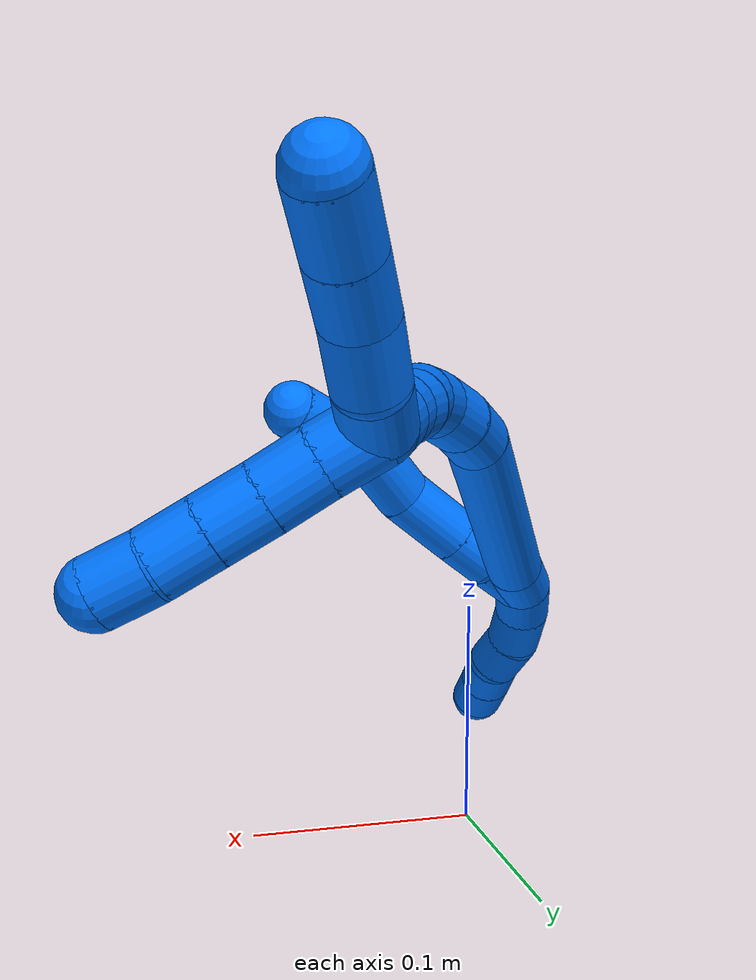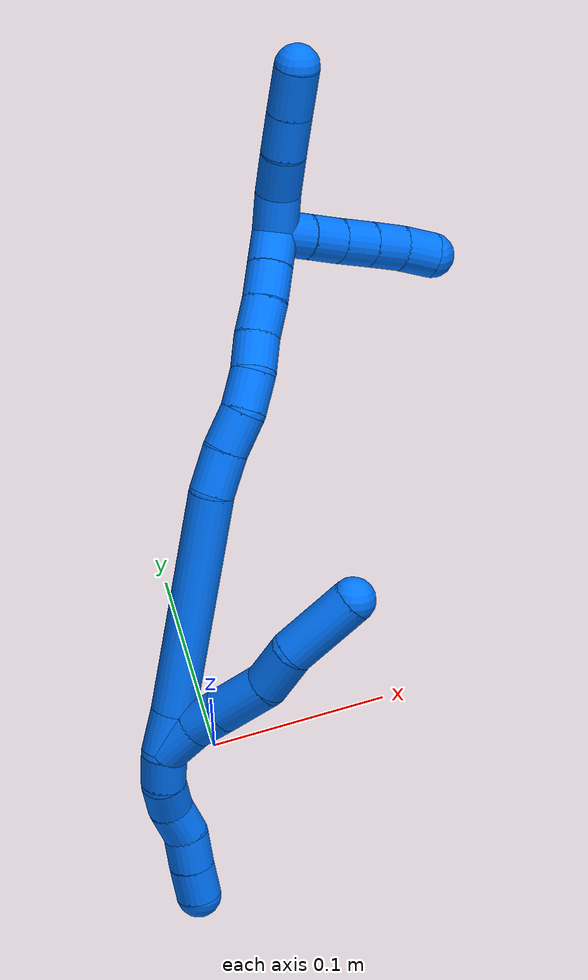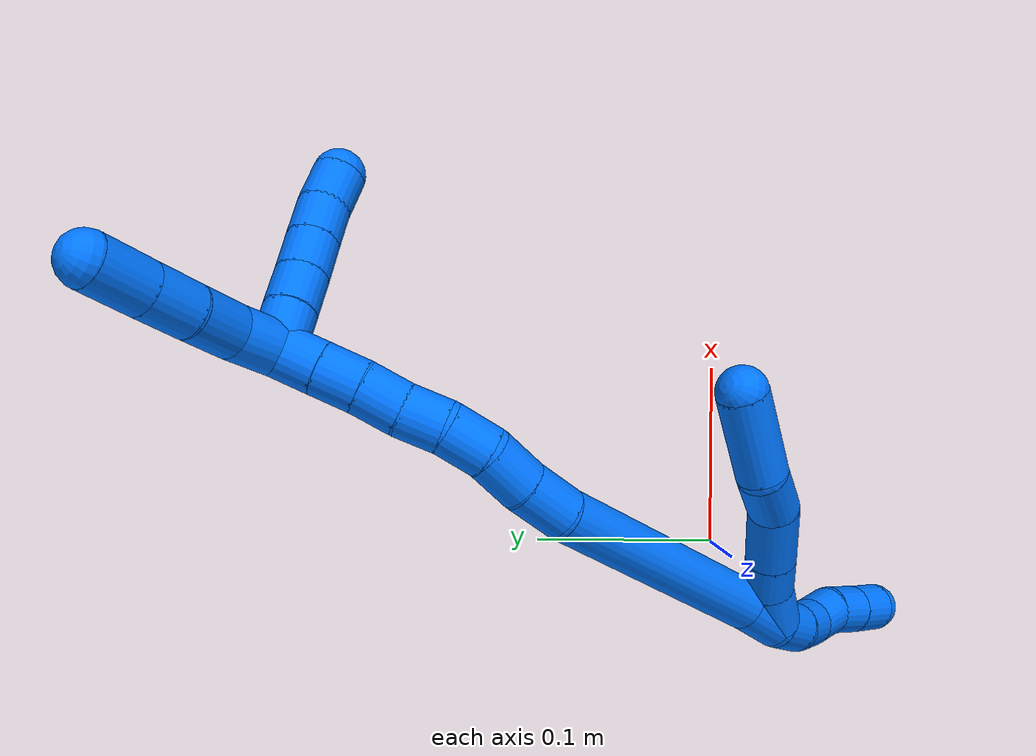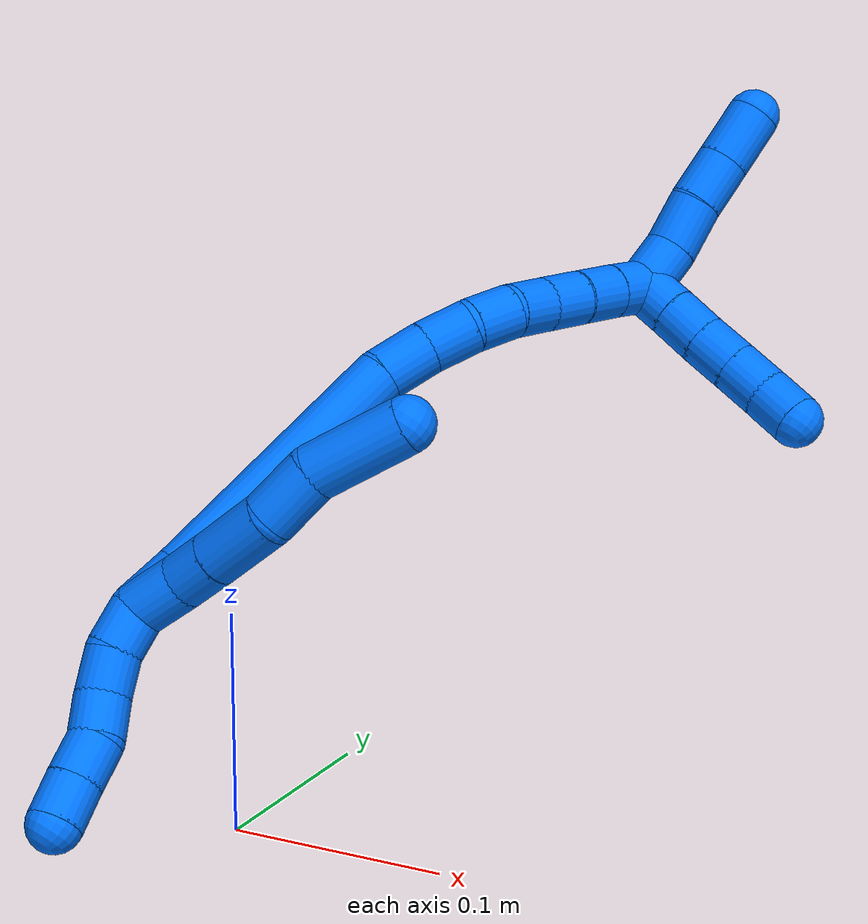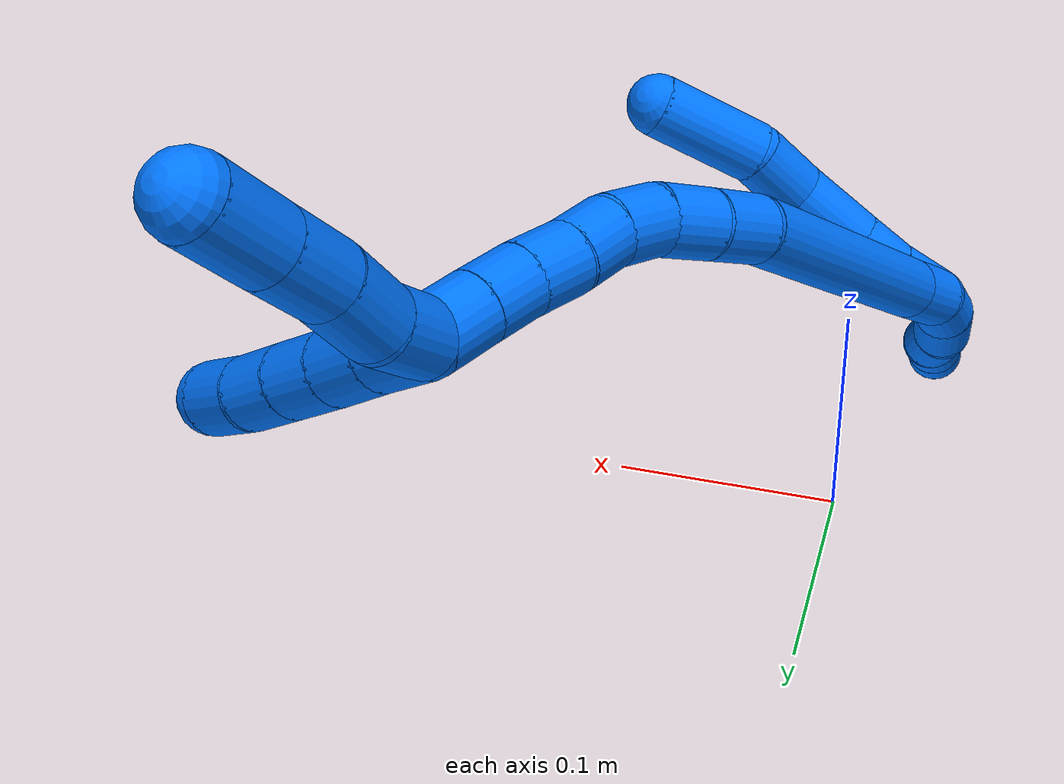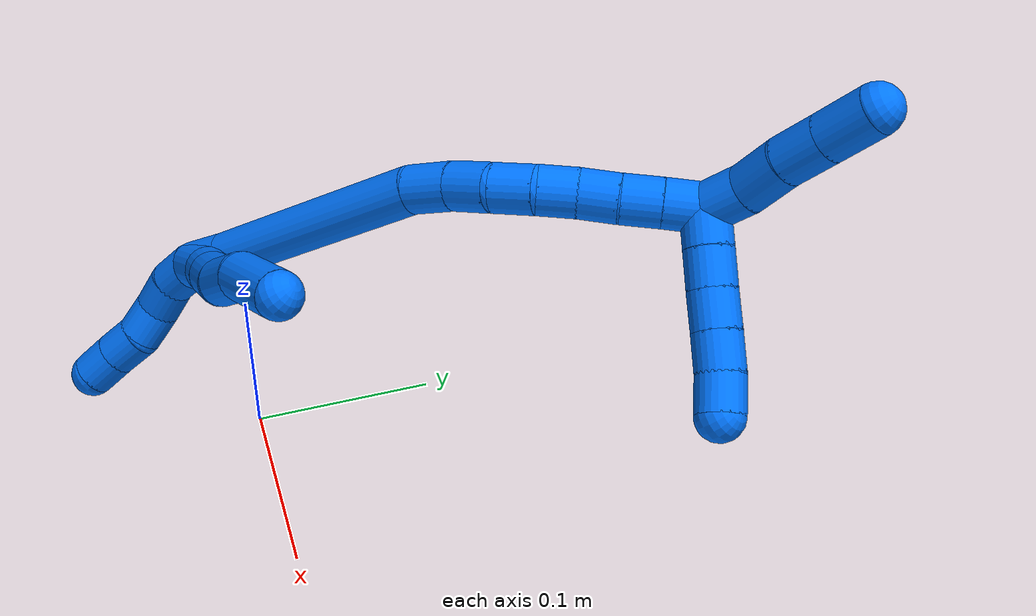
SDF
<sdf version="1.7">
 <world name="default">
  <model name="14">
   <static>0</static>
   <link name="14">
    <collision name="collision-cylinder-e_1_2_8">
     <pose>0.00453 -0.006666 0.009463 0.613715 0.373023 0.119446</pose>
     <geometry><cylinder><radius>0.0125</radius><length>0.02486</length></cylinder></geometry>
     <surface>
      <friction><ode><mu>1.16</mu><mu2>1.16</mu2><slip1>0</slip1><slip2>0</slip2></ode></friction>
      <contact><ode><kp>1e+06</kp><kd>1</kd><max_vel>0</max_vel><min_depth>0.001</min_depth></ode></contact>
     </surface>
    </collision>
    <visual name="visual-cylinder-e_1_2_8">
     <pose>0.00453 -0.006666 0.009463 0.613715 0.373023 0.119446</pose>
     <geometry><cylinder><radius>0.0125</radius><length>0.02486</length></cylinder></geometry>
     <material><ambient>0 0.462745 1 1</ambient></material>
    </visual>
    <collision name="collision-cylinder-e_2_8_9">
     <pose>0.012086 -0.02028 0.025518 0.81168 0.306096 0.132371</pose>
     <geometry><cylinder><radius>0.0125</radius><length>0.020088</length></cylinder></geometry>
     <surface>
      <friction><ode><mu>1.16</mu><mu2>1.16</mu2><slip1>0</slip1><slip2>0</slip2></ode></friction>
      <contact><ode><kp>1e+06</kp><kd>1</kd><max_vel>0</max_vel><min_depth>0.001</min_depth></ode></contact>
     </surface>
    </collision>
    <visual name="visual-cylinder-e_2_8_9">
     <pose>0.012086 -0.02028 0.025518 0.81168 0.306096 0.132371</pose>
     <geometry><cylinder><radius>0.0125</radius><length>0.020088</length></cylinder></geometry>
     <material><ambient>0 0.462745 1 1</ambient></material>
    </visual>
    <collision name="collision-cylinder-e_3_9_10">
     <pose>0.019823 -0.038393 0.043168 0.790155 0.291173 0.122133</pose>
     <geometry><cylinder><radius>0.0125</radius><length>0.03281</length></cylinder></geometry>
     <surface>
      <friction><ode><mu>1.16</mu><mu2>1.16</mu2><slip1>0</slip1><slip2>0</slip2></ode></friction>
      <contact><ode><kp>1e+06</kp><kd>1</kd><max_vel>0</max_vel><min_depth>0.001</min_depth></ode></contact>
     </surface>
    </collision>
    <visual name="visual-cylinder-e_3_9_10">
     <pose>0.019823 -0.038393 0.043168 0.790155 0.291173 0.122133</pose>
     <geometry><cylinder><radius>0.0125</radius><length>0.03281</length></cylinder></geometry>
     <material><ambient>0 0.462745 1 1</ambient></material>
    </visual>
    <collision name="collision-cylinder-e_4_10_11">
     <pose>0.026967 -0.055775 0.066027 0.484983 0.180552 0.044775</pose>
     <geometry><cylinder><radius>0.0125</radius><length>0.027116</length></cylinder></geometry>
     <surface>
      <friction><ode><mu>1.16</mu><mu2>1.16</mu2><slip1>0</slip1><slip2>0</slip2></ode></friction>
      <contact><ode><kp>1e+06</kp><kd>1</kd><max_vel>0</max_vel><min_depth>0.001</min_depth></ode></contact>
     </surface>
    </collision>
    <visual name="visual-cylinder-e_4_10_11">
     <pose>0.026967 -0.055775 0.066027 0.484983 0.180552 0.044775</pose>
     <geometry><cylinder><radius>0.0125</radius><length>0.027116</length></cylinder></geometry>
     <material><ambient>0 0.462745 1 1</ambient></material>
    </visual>
    <collision name="collision-cylinder-e_5_11_6">
     <pose>0.039779 -0.073219 0.094421 0.594775 0.477919 0.149047</pose>
     <geometry><cylinder><radius>0.0125</radius><length>0.045125</length></cylinder></geometry>
     <surface>
      <friction><ode><mu>1.16</mu><mu2>1.16</mu2><slip1>0</slip1><slip2>0</slip2></ode></friction>
      <contact><ode><kp>1e+06</kp><kd>1</kd><max_vel>0</max_vel><min_depth>0.001</min_depth></ode></contact>
     </surface>
    </collision>
    <visual name="visual-cylinder-e_5_11_6">
     <pose>0.039779 -0.073219 0.094421 0.594775 0.477919 0.149047</pose>
     <geometry><cylinder><radius>0.0125</radius><length>0.045125</length></cylinder></geometry>
     <material><ambient>0 0.462745 1 1</ambient></material>
    </visual>
    <collision name="collision-cylinder-e_1_2_12">
     <pose>0.000646 0.000244 -0.009976 -3.1171 0.064639 -2.41741</pose>
     <geometry><cylinder><radius>0.0125</radius><length>0.02</length></cylinder></geometry>
     <surface>
      <friction><ode><mu>1.16</mu><mu2>1.16</mu2><slip1>0</slip1><slip2>0</slip2></ode></friction>
      <contact><ode><kp>1e+06</kp><kd>1</kd><max_vel>0</max_vel><min_depth>0.001</min_depth></ode></contact>
     </surface>
    </collision>
    <visual name="visual-cylinder-e_1_2_12">
     <pose>0.000646 0.000244 -0.009976 -3.1171 0.064639 -2.41741</pose>
     <geometry><cylinder><radius>0.0125</radius><length>0.02</length></cylinder></geometry>
     <material><ambient>0 0.462745 1 1</ambient></material>
    </visual>
    <collision name="collision-cylinder-e_2_12_13">
     <pose>0.00471 0.00065 -0.029349 -3.12444 0.348824 -3.04433</pose>
     <geometry><cylinder><radius>0.0125</radius><length>0.02</length></cylinder></geometry>
     <surface>
      <friction><ode><mu>1.16</mu><mu2>1.16</mu2><slip1>0</slip1><slip2>0</slip2></ode></friction>
      <contact><ode><kp>1e+06</kp><kd>1</kd><max_vel>0</max_vel><min_depth>0.001</min_depth></ode></contact>
     </surface>
    </collision>
    <visual name="visual-cylinder-e_2_12_13">
     <pose>0.00471 0.00065 -0.029349 -3.12444 0.348824 -3.04433</pose>
     <geometry><cylinder><radius>0.0125</radius><length>0.02</length></cylinder></geometry>
     <material><ambient>0 0.462745 1 1</ambient></material>
    </visual>
    <collision name="collision-cylinder-e_3_13_14">
     <pose>0.012091 -0.001788 -0.04755 2.85455 0.407553 1.92103</pose>
     <geometry><cylinder><radius>0.0125</radius><length>0.02</length></cylinder></geometry>
     <surface>
      <friction><ode><mu>1.16</mu><mu2>1.16</mu2><slip1>0</slip1><slip2>0</slip2></ode></friction>
      <contact><ode><kp>1e+06</kp><kd>1</kd><max_vel>0</max_vel><min_depth>0.001</min_depth></ode></contact>
     </surface>
    </collision>
    <visual name="visual-cylinder-e_3_13_14">
     <pose>0.012091 -0.001788 -0.04755 2.85455 0.407553 1.92103</pose>
     <geometry><cylinder><radius>0.0125</radius><length>0.02</length></cylinder></geometry>
     <material><ambient>0 0.462745 1 1</ambient></material>
    </visual>
    <collision name="collision-cylinder-e_4_14_15">
     <pose>0.017109 -0.006264 -0.066121 2.95179 0.105584 1.01356</pose>
     <geometry><cylinder><radius>0.0125</radius><length>0.02</length></cylinder></geometry>
     <surface>
      <friction><ode><mu>1.16</mu><mu2>1.16</mu2><slip1>0</slip1><slip2>0</slip2></ode></friction>
      <contact><ode><kp>1e+06</kp><kd>1</kd><max_vel>0</max_vel><min_depth>0.001</min_depth></ode></contact>
     </surface>
    </collision>
    <visual name="visual-cylinder-e_4_14_15">
     <pose>0.017109 -0.006264 -0.066121 2.95179 0.105584 1.01356</pose>
     <geometry><cylinder><radius>0.0125</radius><length>0.02</length></cylinder></geometry>
     <material><ambient>0 0.462745 1 1</ambient></material>
    </visual>
    <collision name="collision-cylinder-e_5_15_5">
     <pose>0.019619 -0.010174 -0.085569 2.9345 0.14615 1.22741</pose>
     <geometry><cylinder><radius>0.0125</radius><length>0.02</length></cylinder></geometry>
     <surface>
      <friction><ode><mu>1.16</mu><mu2>1.16</mu2><slip1>0</slip1><slip2>0</slip2></ode></friction>
      <contact><ode><kp>1e+06</kp><kd>1</kd><max_vel>0</max_vel><min_depth>0.001</min_depth></ode></contact>
     </surface>
    </collision>
    <visual name="visual-cylinder-e_5_15_5">
     <pose>0.019619 -0.010174 -0.085569 2.9345 0.14615 1.22741</pose>
     <geometry><cylinder><radius>0.0125</radius><length>0.02</length></cylinder></geometry>
     <material><ambient>0 0.462745 1 1</ambient></material>
    </visual>
    <collision name="collision-cylinder-e_1_2_16">
     <pose>0.003036 -6.2e-05 0.011946 0.00519 0.248872 0.000649</pose>
     <geometry><cylinder><radius>0.0125</radius><length>0.024651</length></cylinder></geometry>
     <surface>
      <friction><ode><mu>1.16</mu><mu2>1.16</mu2><slip1>0</slip1><slip2>0</slip2></ode></friction>
      <contact><ode><kp>1e+06</kp><kd>1</kd><max_vel>0</max_vel><min_depth>0.001</min_depth></ode></contact>
     </surface>
    </collision>
    <visual name="visual-cylinder-e_1_2_16">
     <pose>0.003036 -6.2e-05 0.011946 0.00519 0.248872 0.000649</pose>
     <geometry><cylinder><radius>0.0125</radius><length>0.024651</length></cylinder></geometry>
     <material><ambient>0 0.462745 1 1</ambient></material>
    </visual>
    <collision name="collision-cylinder-e_2_16_17">
     <pose>0.018566 0.001458 0.085528 -0.025659 0.19993 -0.002574</pose>
     <geometry><cylinder><radius>0.0125</radius><length>0.125822</length></cylinder></geometry>
     <surface>
      <friction><ode><mu>1.16</mu><mu2>1.16</mu2><slip1>0</slip1><slip2>0</slip2></ode></friction>
      <contact><ode><kp>1e+06</kp><kd>1</kd><max_vel>0</max_vel><min_depth>0.001</min_depth></ode></contact>
     </surface>
    </collision>
    <visual name="visual-cylinder-e_2_16_17">
     <pose>0.018566 0.001458 0.085528 -0.025659 0.19993 -0.002574</pose>
     <geometry><cylinder><radius>0.0125</radius><length>0.125822</length></cylinder></geometry>
     <material><ambient>0 0.462745 1 1</ambient></material>
    </visual>
    <collision name="collision-cylinder-e_3_17_18">
     <pose>0.035996 0.003357 0.158388 -0.028259 0.414257 -0.005939</pose>
     <geometry><cylinder><radius>0.0125</radius><length>0.024527</length></cylinder></geometry>
     <surface>
      <friction><ode><mu>1.16</mu><mu2>1.16</mu2><slip1>0</slip1><slip2>0</slip2></ode></friction>
      <contact><ode><kp>1e+06</kp><kd>1</kd><max_vel>0</max_vel><min_depth>0.001</min_depth></ode></contact>
     </surface>
    </collision>
    <visual name="visual-cylinder-e_3_17_18">
     <pose>0.035996 0.003357 0.158388 -0.028259 0.414257 -0.005939</pose>
     <geometry><cylinder><radius>0.0125</radius><length>0.024527</length></cylinder></geometry>
     <material><ambient>0 0.462745 1 1</ambient></material>
    </visual>
    <collision name="collision-cylinder-e_4_18_19">
     <pose>0.046539 0.003088 0.179497 0.059184 0.515098 0.015593</pose>
     <geometry><cylinder><radius>0.0125</radius><length>0.022763</length></cylinder></geometry>
     <surface>
      <friction><ode><mu>1.16</mu><mu2>1.16</mu2><slip1>0</slip1><slip2>0</slip2></ode></friction>
      <contact><ode><kp>1e+06</kp><kd>1</kd><max_vel>0</max_vel><min_depth>0.001</min_depth></ode></contact>
     </surface>
    </collision>
    <visual name="visual-cylinder-e_4_18_19">
     <pose>0.046539 0.003088 0.179497 0.059184 0.515098 0.015593</pose>
     <geometry><cylinder><radius>0.0125</radius><length>0.022763</length></cylinder></geometry>
     <material><ambient>0 0.462745 1 1</ambient></material>
    </visual>
    <collision name="collision-cylinder-e_5_19_20">
     <pose>0.057951 0.004842 0.198337 -0.255593 0.560299 -0.073908</pose>
     <geometry><cylinder><radius>0.0125</radius><length>0.021849</length></cylinder></geometry>
     <surface>
      <friction><ode><mu>1.16</mu><mu2>1.16</mu2><slip1>0</slip1><slip2>0</slip2></ode></friction>
      <contact><ode><kp>1e+06</kp><kd>1</kd><max_vel>0</max_vel><min_depth>0.001</min_depth></ode></contact>
     </surface>
    </collision>
    <visual name="visual-cylinder-e_5_19_20">
     <pose>0.057951 0.004842 0.198337 -0.255593 0.560299 -0.073908</pose>
     <geometry><cylinder><radius>0.0125</radius><length>0.021849</length></cylinder></geometry>
     <material><ambient>0 0.462745 1 1</ambient></material>
    </visual>
    <collision name="collision-cylinder-e_6_20_21">
     <pose>0.069327 0.011492 0.21444 -0.542552 0.588343 -0.16813</pose>
     <geometry><cylinder><radius>0.0125</radius><length>0.020071</length></cylinder></geometry>
     <surface>
      <friction><ode><mu>1.16</mu><mu2>1.16</mu2><slip1>0</slip1><slip2>0</slip2></ode></friction>
      <contact><ode><kp>1e+06</kp><kd>1</kd><max_vel>0</max_vel><min_depth>0.001</min_depth></ode></contact>
     </surface>
    </collision>
    <visual name="visual-cylinder-e_6_20_21">
     <pose>0.069327 0.011492 0.21444 -0.542552 0.588343 -0.16813</pose>
     <geometry><cylinder><radius>0.0125</radius><length>0.020071</length></cylinder></geometry>
     <material><ambient>0 0.462745 1 1</ambient></material>
    </visual>
    <collision name="collision-cylinder-e_7_21_22">
     <pose>0.081007 0.019079 0.228943 -0.419115 0.649247 -0.142902</pose>
     <geometry><cylinder><radius>0.0125</radius><length>0.020215</length></cylinder></geometry>
     <surface>
      <friction><ode><mu>1.16</mu><mu2>1.16</mu2><slip1>0</slip1><slip2>0</slip2></ode></friction>
      <contact><ode><kp>1e+06</kp><kd>1</kd><max_vel>0</max_vel><min_depth>0.001</min_depth></ode></contact>
     </surface>
    </collision>
    <visual name="visual-cylinder-e_7_21_22">
     <pose>0.081007 0.019079 0.228943 -0.419115 0.649247 -0.142902</pose>
     <geometry><cylinder><radius>0.0125</radius><length>0.020215</length></cylinder></geometry>
     <material><ambient>0 0.462745 1 1</ambient></material>
    </visual>
    <collision name="collision-cylinder-e_8_22_23">
     <pose>0.092872 0.026385 0.243451 -0.513065 0.611235 -0.165144</pose>
     <geometry><cylinder><radius>0.0125</radius><length>0.020053</length></cylinder></geometry>
     <surface>
      <friction><ode><mu>1.16</mu><mu2>1.16</mu2><slip1>0</slip1><slip2>0</slip2></ode></friction>
      <contact><ode><kp>1e+06</kp><kd>1</kd><max_vel>0</max_vel><min_depth>0.001</min_depth></ode></contact>
     </surface>
    </collision>
    <visual name="visual-cylinder-e_8_22_23">
     <pose>0.092872 0.026385 0.243451 -0.513065 0.611235 -0.165144</pose>
     <geometry><cylinder><radius>0.0125</radius><length>0.020053</length></cylinder></geometry>
     <material><ambient>0 0.462745 1 1</ambient></material>
    </visual>
    <collision name="collision-cylinder-e_9_23_1">
     <pose>0.104549 0.03452 0.257575 -0.53222 0.632129 -0.177809</pose>
     <geometry><cylinder><radius>0.0125</radius><length>0.02005</length></cylinder></geometry>
     <surface>
      <friction><ode><mu>1.16</mu><mu2>1.16</mu2><slip1>0</slip1><slip2>0</slip2></ode></friction>
      <contact><ode><kp>1e+06</kp><kd>1</kd><max_vel>0</max_vel><min_depth>0.001</min_depth></ode></contact>
     </surface>
    </collision>
    <visual name="visual-cylinder-e_9_23_1">
     <pose>0.104549 0.03452 0.257575 -0.53222 0.632129 -0.177809</pose>
     <geometry><cylinder><radius>0.0125</radius><length>0.02005</length></cylinder></geometry>
     <material><ambient>0 0.462745 1 1</ambient></material>
    </visual>
    <collision name="collision-cylinder-e_1_1_24">
     <pose>0.111334 0.039075 0.276028 -0.03919 0.074839 -0.001467</pose>
     <geometry><cylinder><radius>0.0125</radius><length>0.02305</length></cylinder></geometry>
     <surface>
      <friction><ode><mu>1.16</mu><mu2>1.16</mu2><slip1>0</slip1><slip2>0</slip2></ode></friction>
      <contact><ode><kp>1e+06</kp><kd>1</kd><max_vel>0</max_vel><min_depth>0.001</min_depth></ode></contact>
     </surface>
    </collision>
    <visual name="visual-cylinder-e_1_1_24">
     <pose>0.111334 0.039075 0.276028 -0.03919 0.074839 -0.001467</pose>
     <geometry><cylinder><radius>0.0125</radius><length>0.02305</length></cylinder></geometry>
     <material><ambient>0 0.462745 1 1</ambient></material>
    </visual>
    <collision name="collision-cylinder-e_2_24_25">
     <pose>0.111127 0.03747 0.299827 0.165354 -0.085445 -0.007085</pose>
     <geometry><cylinder><radius>0.0125</radius><length>0.025064</length></cylinder></geometry>
     <surface>
      <friction><ode><mu>1.16</mu><mu2>1.16</mu2><slip1>0</slip1><slip2>0</slip2></ode></friction>
      <contact><ode><kp>1e+06</kp><kd>1</kd><max_vel>0</max_vel><min_depth>0.001</min_depth></ode></contact>
     </surface>
    </collision>
    <visual name="visual-cylinder-e_2_24_25">
     <pose>0.111127 0.03747 0.299827 0.165354 -0.085445 -0.007085</pose>
     <geometry><cylinder><radius>0.0125</radius><length>0.025064</length></cylinder></geometry>
     <material><ambient>0 0.462745 1 1</ambient></material>
    </visual>
    <collision name="collision-cylinder-e_3_25_26">
     <pose>0.110185 0.034202 0.324177 0.10042 0.010596 0.000532</pose>
     <geometry><cylinder><radius>0.0125</radius><length>0.024191</length></cylinder></geometry>
     <surface>
      <friction><ode><mu>1.16</mu><mu2>1.16</mu2><slip1>0</slip1><slip2>0</slip2></ode></friction>
      <contact><ode><kp>1e+06</kp><kd>1</kd><max_vel>0</max_vel><min_depth>0.001</min_depth></ode></contact>
     </surface>
    </collision>
    <visual name="visual-cylinder-e_3_25_26">
     <pose>0.110185 0.034202 0.324177 0.10042 0.010596 0.000532</pose>
     <geometry><cylinder><radius>0.0125</radius><length>0.024191</length></cylinder></geometry>
     <material><ambient>0 0.462745 1 1</ambient></material>
    </visual>
    <collision name="collision-cylinder-e_4_26_4">
     <pose>0.110389 0.031388 0.349965 0.115906 0.005477 0.000318</pose>
     <geometry><cylinder><radius>0.0125</radius><length>0.027695</length></cylinder></geometry>
     <surface>
      <friction><ode><mu>1.16</mu><mu2>1.16</mu2><slip1>0</slip1><slip2>0</slip2></ode></friction>
      <contact><ode><kp>1e+06</kp><kd>1</kd><max_vel>0</max_vel><min_depth>0.001</min_depth></ode></contact>
     </surface>
    </collision>
    <visual name="visual-cylinder-e_4_26_4">
     <pose>0.110389 0.031388 0.349965 0.115906 0.005477 0.000318</pose>
     <geometry><cylinder><radius>0.0125</radius><length>0.027695</length></cylinder></geometry>
     <material><ambient>0 0.462745 1 1</ambient></material>
    </visual>
    <collision name="collision-cylinder-e_1_1_27">
     <pose>0.119408 0.034941 0.261978 2.17927 1.10526 1.73663</pose>
     <geometry><cylinder><radius>0.0125</radius><length>0.02</length></cylinder></geometry>
     <surface>
      <friction><ode><mu>1.16</mu><mu2>1.16</mu2><slip1>0</slip1><slip2>0</slip2></ode></friction>
      <contact><ode><kp>1e+06</kp><kd>1</kd><max_vel>0</max_vel><min_depth>0.001</min_depth></ode></contact>
     </surface>
    </collision>
    <visual name="visual-cylinder-e_1_1_27">
     <pose>0.119408 0.034941 0.261978 2.17927 1.10526 1.73663</pose>
     <geometry><cylinder><radius>0.0125</radius><length>0.02</length></cylinder></geometry>
     <material><ambient>0 0.462745 1 1</ambient></material>
    </visual>
    <collision name="collision-cylinder-e_2_27_28">
     <pose>0.137342 0.027865 0.256666 2.25117 1.11922 1.83963</pose>
     <geometry><cylinder><radius>0.0125</radius><length>0.02</length></cylinder></geometry>
     <surface>
      <friction><ode><mu>1.16</mu><mu2>1.16</mu2><slip1>0</slip1><slip2>0</slip2></ode></friction>
      <contact><ode><kp>1e+06</kp><kd>1</kd><max_vel>0</max_vel><min_depth>0.001</min_depth></ode></contact>
     </surface>
    </collision>
    <visual name="visual-cylinder-e_2_27_28">
     <pose>0.137342 0.027865 0.256666 2.25117 1.11922 1.83963</pose>
     <geometry><cylinder><radius>0.0125</radius><length>0.02</length></cylinder></geometry>
     <material><ambient>0 0.462745 1 1</ambient></material>
    </visual>
    <collision name="collision-cylinder-e_3_28_29">
     <pose>0.15536 0.020923 0.251468 2.1755 1.12462 1.75334</pose>
     <geometry><cylinder><radius>0.0125</radius><length>0.02</length></cylinder></geometry>
     <surface>
      <friction><ode><mu>1.16</mu><mu2>1.16</mu2><slip1>0</slip1><slip2>0</slip2></ode></friction>
      <contact><ode><kp>1e+06</kp><kd>1</kd><max_vel>0</max_vel><min_depth>0.001</min_depth></ode></contact>
     </surface>
    </collision>
    <visual name="visual-cylinder-e_3_28_29">
     <pose>0.15536 0.020923 0.251468 2.1755 1.12462 1.75334</pose>
     <geometry><cylinder><radius>0.0125</radius><length>0.02</length></cylinder></geometry>
     <material><ambient>0 0.462745 1 1</ambient></material>
    </visual>
    <collision name="collision-cylinder-e_4_29_30">
     <pose>0.173351 0.013768 0.246454 2.18847 1.11274 1.75593</pose>
     <geometry><cylinder><radius>0.0125</radius><length>0.02</length></cylinder></geometry>
     <surface>
      <friction><ode><mu>1.16</mu><mu2>1.16</mu2><slip1>0</slip1><slip2>0</slip2></ode></friction>
      <contact><ode><kp>1e+06</kp><kd>1</kd><max_vel>0</max_vel><min_depth>0.001</min_depth></ode></contact>
     </surface>
    </collision>
    <visual name="visual-cylinder-e_4_29_30">
     <pose>0.173351 0.013768 0.246454 2.18847 1.11274 1.75593</pose>
     <geometry><cylinder><radius>0.0125</radius><length>0.02</length></cylinder></geometry>
     <material><ambient>0 0.462745 1 1</ambient></material>
    </visual>
    <collision name="collision-cylinder-e_5_30_3">
     <pose>0.190656 0.00552 0.240902 2.14305 0.985638 1.55539</pose>
     <geometry><cylinder><radius>0.0125</radius><length>0.02</length></cylinder></geometry>
     <surface>
      <friction><ode><mu>1.16</mu><mu2>1.16</mu2><slip1>0</slip1><slip2>0</slip2></ode></friction>
      <contact><ode><kp>1e+06</kp><kd>1</kd><max_vel>0</max_vel><min_depth>0.001</min_depth></ode></contact>
     </surface>
    </collision>
    <visual name="visual-cylinder-e_5_30_3">
     <pose>0.190656 0.00552 0.240902 2.14305 0.985638 1.55539</pose>
     <geometry><cylinder><radius>0.0125</radius><length>0.02</length></cylinder></geometry>
     <material><ambient>0 0.462745 1 1</ambient></material>
    </visual>
    <collision name="collision-sphere-3">
     <pose>0.198992 0.000877 0.237911 0 -0 0</pose>
     <geometry><sphere><radius>0.0125</radius></sphere></geometry>
     <surface>
      <friction><ode><mu>1.16</mu><mu2>1.16</mu2><slip1>0</slip1><slip2>0</slip2></ode></friction>
      <contact><ode><kp>1e+06</kp><kd>1</kd><max_vel>0</max_vel><min_depth>0.001</min_depth></ode></contact>
     </surface>
    </collision>
    <visual name="visual-sphere-3">
     <pose>0.198992 0.000877 0.237911 0 -0 0</pose>
     <geometry><sphere><radius>0.0125</radius></sphere></geometry>
     <material><ambient>0 0.462745 1 1</ambient></material>
    </visual>
    <collision name="collision-sphere-30">
     <pose>0.18232 0.010163 0.243893 0 -0 0</pose>
     <geometry><sphere><radius>0.0125</radius></sphere></geometry>
     <surface>
      <friction><ode><mu>1.16</mu><mu2>1.16</mu2><slip1>0</slip1><slip2>0</slip2></ode></friction>
      <contact><ode><kp>1e+06</kp><kd>1</kd><max_vel>0</max_vel><min_depth>0.001</min_depth></ode></contact>
     </surface>
    </collision>
    <visual name="visual-sphere-30">
     <pose>0.18232 0.010163 0.243893 0 -0 0</pose>
     <geometry><sphere><radius>0.0125</radius></sphere></geometry>
     <material><ambient>0 0.462745 1 1</ambient></material>
    </visual>
    <collision name="collision-sphere-29">
     <pose>0.164381 0.017373 0.249015 0 -0 0</pose>
     <geometry><sphere><radius>0.0125</radius></sphere></geometry>
     <surface>
      <friction><ode><mu>1.16</mu><mu2>1.16</mu2><slip1>0</slip1><slip2>0</slip2></ode></friction>
      <contact><ode><kp>1e+06</kp><kd>1</kd><max_vel>0</max_vel><min_depth>0.001</min_depth></ode></contact>
     </surface>
    </collision>
    <visual name="visual-sphere-29">
     <pose>0.164381 0.017373 0.249015 0 -0 0</pose>
     <geometry><sphere><radius>0.0125</radius></sphere></geometry>
     <material><ambient>0 0.462745 1 1</ambient></material>
    </visual>
    <collision name="collision-sphere-28">
     <pose>0.146339 0.024473 0.253921 0 -0 0</pose>
     <geometry><sphere><radius>0.0125</radius></sphere></geometry>
     <surface>
      <friction><ode><mu>1.16</mu><mu2>1.16</mu2><slip1>0</slip1><slip2>0</slip2></ode></friction>
      <contact><ode><kp>1e+06</kp><kd>1</kd><max_vel>0</max_vel><min_depth>0.001</min_depth></ode></contact>
     </surface>
    </collision>
    <visual name="visual-sphere-28">
     <pose>0.146339 0.024473 0.253921 0 -0 0</pose>
     <geometry><sphere><radius>0.0125</radius></sphere></geometry>
     <material><ambient>0 0.462745 1 1</ambient></material>
    </visual>
    <collision name="collision-sphere-27">
     <pose>0.128344 0.031258 0.259412 0 -0 0</pose>
     <geometry><sphere><radius>0.0125</radius></sphere></geometry>
     <surface>
      <friction><ode><mu>1.16</mu><mu2>1.16</mu2><slip1>0</slip1><slip2>0</slip2></ode></friction>
      <contact><ode><kp>1e+06</kp><kd>1</kd><max_vel>0</max_vel><min_depth>0.001</min_depth></ode></contact>
     </surface>
    </collision>
    <visual name="visual-sphere-27">
     <pose>0.128344 0.031258 0.259412 0 -0 0</pose>
     <geometry><sphere><radius>0.0125</radius></sphere></geometry>
     <material><ambient>0 0.462745 1 1</ambient></material>
    </visual>
    <collision name="collision-sphere-4">
     <pose>0.110465 0.029787 0.36372 0 -0 0</pose>
     <geometry><sphere><radius>0.0125</radius></sphere></geometry>
     <surface>
      <friction><ode><mu>1.16</mu><mu2>1.16</mu2><slip1>0</slip1><slip2>0</slip2></ode></friction>
      <contact><ode><kp>1e+06</kp><kd>1</kd><max_vel>0</max_vel><min_depth>0.001</min_depth></ode></contact>
     </surface>
    </collision>
    <visual name="visual-sphere-4">
     <pose>0.110465 0.029787 0.36372 0 -0 0</pose>
     <geometry><sphere><radius>0.0125</radius></sphere></geometry>
     <material><ambient>0 0.462745 1 1</ambient></material>
    </visual>
    <collision name="collision-sphere-26">
     <pose>0.110313 0.032989 0.336211 0 -0 0</pose>
     <geometry><sphere><radius>0.0125</radius></sphere></geometry>
     <surface>
      <friction><ode><mu>1.16</mu><mu2>1.16</mu2><slip1>0</slip1><slip2>0</slip2></ode></friction>
      <contact><ode><kp>1e+06</kp><kd>1</kd><max_vel>0</max_vel><min_depth>0.001</min_depth></ode></contact>
     </surface>
    </collision>
    <visual name="visual-sphere-26">
     <pose>0.110313 0.032989 0.336211 0 -0 0</pose>
     <geometry><sphere><radius>0.0125</radius></sphere></geometry>
     <material><ambient>0 0.462745 1 1</ambient></material>
    </visual>
    <collision name="collision-sphere-25">
     <pose>0.110057 0.035414 0.312143 0 -0 0</pose>
     <geometry><sphere><radius>0.0125</radius></sphere></geometry>
     <surface>
      <friction><ode><mu>1.16</mu><mu2>1.16</mu2><slip1>0</slip1><slip2>0</slip2></ode></friction>
      <contact><ode><kp>1e+06</kp><kd>1</kd><max_vel>0</max_vel><min_depth>0.001</min_depth></ode></contact>
     </surface>
    </collision>
    <visual name="visual-sphere-25">
     <pose>0.110057 0.035414 0.312143 0 -0 0</pose>
     <geometry><sphere><radius>0.0125</radius></sphere></geometry>
     <material><ambient>0 0.462745 1 1</ambient></material>
    </visual>
    <collision name="collision-sphere-24">
     <pose>0.112196 0.039525 0.287512 0 -0 0</pose>
     <geometry><sphere><radius>0.0125</radius></sphere></geometry>
     <surface>
      <friction><ode><mu>1.16</mu><mu2>1.16</mu2><slip1>0</slip1><slip2>0</slip2></ode></friction>
      <contact><ode><kp>1e+06</kp><kd>1</kd><max_vel>0</max_vel><min_depth>0.001</min_depth></ode></contact>
     </surface>
    </collision>
    <visual name="visual-sphere-24">
     <pose>0.112196 0.039525 0.287512 0 -0 0</pose>
     <geometry><sphere><radius>0.0125</radius></sphere></geometry>
     <material><ambient>0 0.462745 1 1</ambient></material>
    </visual>
    <collision name="collision-sphere-1">
     <pose>0.110473 0.038624 0.264544 0 -0 0</pose>
     <geometry><sphere><radius>0.0125</radius></sphere></geometry>
     <surface>
      <friction><ode><mu>1.16</mu><mu2>1.16</mu2><slip1>0</slip1><slip2>0</slip2></ode></friction>
      <contact><ode><kp>1e+06</kp><kd>1</kd><max_vel>0</max_vel><min_depth>0.001</min_depth></ode></contact>
     </surface>
    </collision>
    <visual name="visual-sphere-1">
     <pose>0.110473 0.038624 0.264544 0 -0 0</pose>
     <geometry><sphere><radius>0.0125</radius></sphere></geometry>
     <material><ambient>0 0.462745 1 1</ambient></material>
    </visual>
    <collision name="collision-sphere-23">
     <pose>0.098626 0.030416 0.250605 0 -0 0</pose>
     <geometry><sphere><radius>0.0125</radius></sphere></geometry>
     <surface>
      <friction><ode><mu>1.16</mu><mu2>1.16</mu2><slip1>0</slip1><slip2>0</slip2></ode></friction>
      <contact><ode><kp>1e+06</kp><kd>1</kd><max_vel>0</max_vel><min_depth>0.001</min_depth></ode></contact>
     </surface>
    </collision>
    <visual name="visual-sphere-23">
     <pose>0.098626 0.030416 0.250605 0 -0 0</pose>
     <geometry><sphere><radius>0.0125</radius></sphere></geometry>
     <material><ambient>0 0.462745 1 1</ambient></material>
    </visual>
    <collision name="collision-sphere-22">
     <pose>0.087118 0.022355 0.236297 0 -0 0</pose>
     <geometry><sphere><radius>0.0125</radius></sphere></geometry>
     <surface>
      <friction><ode><mu>1.16</mu><mu2>1.16</mu2><slip1>0</slip1><slip2>0</slip2></ode></friction>
      <contact><ode><kp>1e+06</kp><kd>1</kd><max_vel>0</max_vel><min_depth>0.001</min_depth></ode></contact>
     </surface>
    </collision>
    <visual name="visual-sphere-22">
     <pose>0.087118 0.022355 0.236297 0 -0 0</pose>
     <geometry><sphere><radius>0.0125</radius></sphere></geometry>
     <material><ambient>0 0.462745 1 1</ambient></material>
    </visual>
    <collision name="collision-sphere-21">
     <pose>0.074896 0.015802 0.221589 0 -0 0</pose>
     <geometry><sphere><radius>0.0125</radius></sphere></geometry>
     <surface>
      <friction><ode><mu>1.16</mu><mu2>1.16</mu2><slip1>0</slip1><slip2>0</slip2></ode></friction>
      <contact><ode><kp>1e+06</kp><kd>1</kd><max_vel>0</max_vel><min_depth>0.001</min_depth></ode></contact>
     </surface>
    </collision>
    <visual name="visual-sphere-21">
     <pose>0.074896 0.015802 0.221589 0 -0 0</pose>
     <geometry><sphere><radius>0.0125</radius></sphere></geometry>
     <material><ambient>0 0.462745 1 1</ambient></material>
    </visual>
    <collision name="collision-sphere-6">
     <pose>0.050156 -0.084445 0.111015 0 -0 0</pose>
     <geometry><sphere><radius>0.0125</radius></sphere></geometry>
     <surface>
      <friction><ode><mu>1.16</mu><mu2>1.16</mu2><slip1>0</slip1><slip2>0</slip2></ode></friction>
      <contact><ode><kp>1e+06</kp><kd>1</kd><max_vel>0</max_vel><min_depth>0.001</min_depth></ode></contact>
     </surface>
    </collision>
    <visual name="visual-sphere-6">
     <pose>0.050156 -0.084445 0.111015 0 -0 0</pose>
     <geometry><sphere><radius>0.0125</radius></sphere></geometry>
     <material><ambient>0 0.462745 1 1</ambient></material>
    </visual>
    <collision name="collision-sphere-11">
     <pose>0.029401 -0.061993 0.077826 0 -0 0</pose>
     <geometry><sphere><radius>0.0125</radius></sphere></geometry>
     <surface>
      <friction><ode><mu>1.16</mu><mu2>1.16</mu2><slip1>0</slip1><slip2>0</slip2></ode></friction>
      <contact><ode><kp>1e+06</kp><kd>1</kd><max_vel>0</max_vel><min_depth>0.001</min_depth></ode></contact>
     </surface>
    </collision>
    <visual name="visual-sphere-11">
     <pose>0.029401 -0.061993 0.077826 0 -0 0</pose>
     <geometry><sphere><radius>0.0125</radius></sphere></geometry>
     <material><ambient>0 0.462745 1 1</ambient></material>
    </visual>
    <collision name="collision-sphere-10">
     <pose>0.024532 -0.049557 0.054227 0 -0 0</pose>
     <geometry><sphere><radius>0.0125</radius></sphere></geometry>
     <surface>
      <friction><ode><mu>1.16</mu><mu2>1.16</mu2><slip1>0</slip1><slip2>0</slip2></ode></friction>
      <contact><ode><kp>1e+06</kp><kd>1</kd><max_vel>0</max_vel><min_depth>0.001</min_depth></ode></contact>
     </surface>
    </collision>
    <visual name="visual-sphere-10">
     <pose>0.024532 -0.049557 0.054227 0 -0 0</pose>
     <geometry><sphere><radius>0.0125</radius></sphere></geometry>
     <material><ambient>0 0.462745 1 1</ambient></material>
    </visual>
    <collision name="collision-sphere-9">
     <pose>0.015113 -0.027228 0.032109 0 -0 0</pose>
     <geometry><sphere><radius>0.0125</radius></sphere></geometry>
     <surface>
      <friction><ode><mu>1.16</mu><mu2>1.16</mu2><slip1>0</slip1><slip2>0</slip2></ode></friction>
      <contact><ode><kp>1e+06</kp><kd>1</kd><max_vel>0</max_vel><min_depth>0.001</min_depth></ode></contact>
     </surface>
    </collision>
    <visual name="visual-sphere-9">
     <pose>0.015113 -0.027228 0.032109 0 -0 0</pose>
     <geometry><sphere><radius>0.0125</radius></sphere></geometry>
     <material><ambient>0 0.462745 1 1</ambient></material>
    </visual>
    <collision name="collision-sphere-2">
     <geometry><sphere><radius>0.0125</radius></sphere></geometry>
     <surface>
      <friction><ode><mu>1.16</mu><mu2>1.16</mu2><slip1>0</slip1><slip2>0</slip2></ode></friction>
      <contact><ode><kp>1e+06</kp><kd>1</kd><max_vel>0</max_vel><min_depth>0.001</min_depth></ode></contact>
     </surface>
    </collision>
    <visual name="visual-sphere-2">
     <geometry><sphere><radius>0.0125</radius></sphere></geometry>
     <material><ambient>0 0.462745 1 1</ambient></material>
    </visual>
    <collision name="collision-sphere-19">
     <pose>0.052146 0.002503 0.189384 0 -0 0</pose>
     <geometry><sphere><radius>0.0125</radius></sphere></geometry>
     <surface>
      <friction><ode><mu>1.16</mu><mu2>1.16</mu2><slip1>0</slip1><slip2>0</slip2></ode></friction>
      <contact><ode><kp>1e+06</kp><kd>1</kd><max_vel>0</max_vel><min_depth>0.001</min_depth></ode></contact>
     </surface>
    </collision>
    <visual name="visual-sphere-19">
     <pose>0.052146 0.002503 0.189384 0 -0 0</pose>
     <geometry><sphere><radius>0.0125</radius></sphere></geometry>
     <material><ambient>0 0.462745 1 1</ambient></material>
    </visual>
    <collision name="collision-sphere-8">
     <pose>0.00906 -0.013333 0.018926 0 -0 0</pose>
     <geometry><sphere><radius>0.0125</radius></sphere></geometry>
     <surface>
      <friction><ode><mu>1.16</mu><mu2>1.16</mu2><slip1>0</slip1><slip2>0</slip2></ode></friction>
      <contact><ode><kp>1e+06</kp><kd>1</kd><max_vel>0</max_vel><min_depth>0.001</min_depth></ode></contact>
     </surface>
    </collision>
    <visual name="visual-sphere-8">
     <pose>0.00906 -0.013333 0.018926 0 -0 0</pose>
     <geometry><sphere><radius>0.0125</radius></sphere></geometry>
     <material><ambient>0 0.462745 1 1</ambient></material>
    </visual>
    <collision name="collision-sphere-12">
     <pose>0.001292 0.000489 -0.019952 0 -0 0</pose>
     <geometry><sphere><radius>0.0125</radius></sphere></geometry>
     <surface>
      <friction><ode><mu>1.16</mu><mu2>1.16</mu2><slip1>0</slip1><slip2>0</slip2></ode></friction>
      <contact><ode><kp>1e+06</kp><kd>1</kd><max_vel>0</max_vel><min_depth>0.001</min_depth></ode></contact>
     </surface>
    </collision>
    <visual name="visual-sphere-12">
     <pose>0.001292 0.000489 -0.019952 0 -0 0</pose>
     <geometry><sphere><radius>0.0125</radius></sphere></geometry>
     <material><ambient>0 0.462745 1 1</ambient></material>
    </visual>
    <collision name="collision-sphere-13">
     <pose>0.008128 0.000811 -0.038745 0 -0 0</pose>
     <geometry><sphere><radius>0.0125</radius></sphere></geometry>
     <surface>
      <friction><ode><mu>1.16</mu><mu2>1.16</mu2><slip1>0</slip1><slip2>0</slip2></ode></friction>
      <contact><ode><kp>1e+06</kp><kd>1</kd><max_vel>0</max_vel><min_depth>0.001</min_depth></ode></contact>
     </surface>
    </collision>
    <visual name="visual-sphere-13">
     <pose>0.008128 0.000811 -0.038745 0 -0 0</pose>
     <geometry><sphere><radius>0.0125</radius></sphere></geometry>
     <material><ambient>0 0.462745 1 1</ambient></material>
    </visual>
    <collision name="collision-sphere-14">
     <pose>0.016055 -0.004387 -0.056356 0 -0 0</pose>
     <geometry><sphere><radius>0.0125</radius></sphere></geometry>
     <surface>
      <friction><ode><mu>1.16</mu><mu2>1.16</mu2><slip1>0</slip1><slip2>0</slip2></ode></friction>
      <contact><ode><kp>1e+06</kp><kd>1</kd><max_vel>0</max_vel><min_depth>0.001</min_depth></ode></contact>
     </surface>
    </collision>
    <visual name="visual-sphere-14">
     <pose>0.016055 -0.004387 -0.056356 0 -0 0</pose>
     <geometry><sphere><radius>0.0125</radius></sphere></geometry>
     <material><ambient>0 0.462745 1 1</ambient></material>
    </visual>
    <collision name="collision-sphere-15">
     <pose>0.018163 -0.00814 -0.075887 0 -0 0</pose>
     <geometry><sphere><radius>0.0125</radius></sphere></geometry>
     <surface>
      <friction><ode><mu>1.16</mu><mu2>1.16</mu2><slip1>0</slip1><slip2>0</slip2></ode></friction>
      <contact><ode><kp>1e+06</kp><kd>1</kd><max_vel>0</max_vel><min_depth>0.001</min_depth></ode></contact>
     </surface>
    </collision>
    <visual name="visual-sphere-15">
     <pose>0.018163 -0.00814 -0.075887 0 -0 0</pose>
     <geometry><sphere><radius>0.0125</radius></sphere></geometry>
     <material><ambient>0 0.462745 1 1</ambient></material>
    </visual>
    <collision name="collision-sphere-5">
     <pose>0.021075 -0.012208 -0.095251 0 -0 0</pose>
     <geometry><sphere><radius>0.0125</radius></sphere></geometry>
     <surface>
      <friction><ode><mu>1.16</mu><mu2>1.16</mu2><slip1>0</slip1><slip2>0</slip2></ode></friction>
      <contact><ode><kp>1e+06</kp><kd>1</kd><max_vel>0</max_vel><min_depth>0.001</min_depth></ode></contact>
     </surface>
    </collision>
    <visual name="visual-sphere-5">
     <pose>0.021075 -0.012208 -0.095251 0 -0 0</pose>
     <geometry><sphere><radius>0.0125</radius></sphere></geometry>
     <material><ambient>0 0.462745 1 1</ambient></material>
    </visual>
    <collision name="collision-sphere-16">
     <pose>0.006072 -0.000124 0.023891 0 -0 0</pose>
     <geometry><sphere><radius>0.0125</radius></sphere></geometry>
     <surface>
      <friction><ode><mu>1.16</mu><mu2>1.16</mu2><slip1>0</slip1><slip2>0</slip2></ode></friction>
      <contact><ode><kp>1e+06</kp><kd>1</kd><max_vel>0</max_vel><min_depth>0.001</min_depth></ode></contact>
     </surface>
    </collision>
    <visual name="visual-sphere-16">
     <pose>0.006072 -0.000124 0.023891 0 -0 0</pose>
     <geometry><sphere><radius>0.0125</radius></sphere></geometry>
     <material><ambient>0 0.462745 1 1</ambient></material>
    </visual>
    <collision name="collision-sphere-17">
     <pose>0.03106 0.00304 0.147166 0 -0 0</pose>
     <geometry><sphere><radius>0.0125</radius></sphere></geometry>
     <surface>
      <friction><ode><mu>1.16</mu><mu2>1.16</mu2><slip1>0</slip1><slip2>0</slip2></ode></friction>
      <contact><ode><kp>1e+06</kp><kd>1</kd><max_vel>0</max_vel><min_depth>0.001</min_depth></ode></contact>
     </surface>
    </collision>
    <visual name="visual-sphere-17">
     <pose>0.03106 0.00304 0.147166 0 -0 0</pose>
     <geometry><sphere><radius>0.0125</radius></sphere></geometry>
     <material><ambient>0 0.462745 1 1</ambient></material>
    </visual>
    <collision name="collision-sphere-18">
     <pose>0.040933 0.003674 0.16961 0 -0 0</pose>
     <geometry><sphere><radius>0.0125</radius></sphere></geometry>
     <surface>
      <friction><ode><mu>1.16</mu><mu2>1.16</mu2><slip1>0</slip1><slip2>0</slip2></ode></friction>
      <contact><ode><kp>1e+06</kp><kd>1</kd><max_vel>0</max_vel><min_depth>0.001</min_depth></ode></contact>
     </surface>
    </collision>
    <visual name="visual-sphere-18">
     <pose>0.040933 0.003674 0.16961 0 -0 0</pose>
     <geometry><sphere><radius>0.0125</radius></sphere></geometry>
     <material><ambient>0 0.462745 1 1</ambient></material>
    </visual>
    <collision name="collision-sphere-20">
     <pose>0.063757 0.007182 0.207291 0 -0 0</pose>
     <geometry><sphere><radius>0.0125</radius></sphere></geometry>
     <surface>
      <friction><ode><mu>1.16</mu><mu2>1.16</mu2><slip1>0</slip1><slip2>0</slip2></ode></friction>
      <contact><ode><kp>1e+06</kp><kd>1</kd><max_vel>0</max_vel><min_depth>0.001</min_depth></ode></contact>
     </surface>
    </collision>
    <visual name="visual-sphere-20">
     <pose>0.063757 0.007182 0.207291 0 -0 0</pose>
     <geometry><sphere><radius>0.0125</radius></sphere></geometry>
     <material><ambient>0 0.462745 1 1</ambient></material>
    </visual>
    <inertial>
     <pose>0.058425 0.001172 0.136458 0 -0 0</pose>
     <mass>0.75</mass>
     <inertia><ixx>0.000233</ixx><ixy>0</ixy><ixz>0</ixz><iyy>0.000216</iyy><iyz>0</iyz><izz>-2e-05</izz></inertia>
    </inertial>
   </link>
   <pose>-0.033253 -0.022128 0.103 -0.567574 0.577194 0.347532</pose>
  </model>
 </world>
</sdf>
